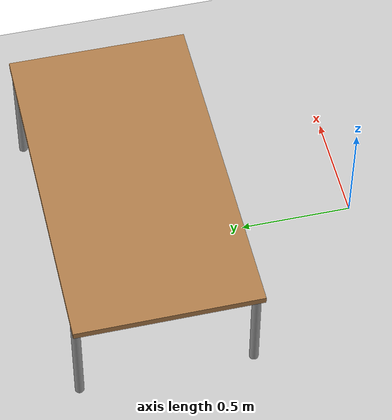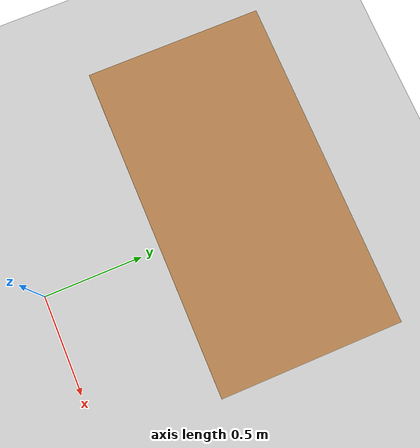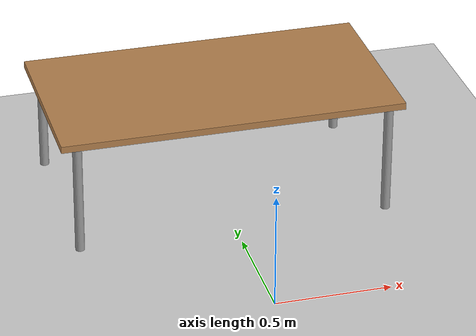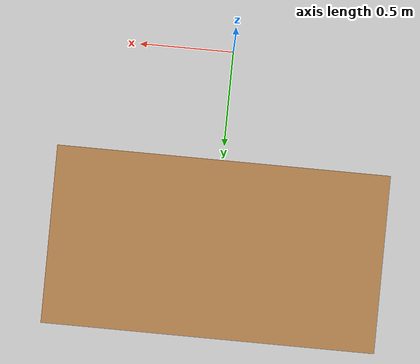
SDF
<?xml version="1.0" ?>
<sdf version="1.4">
  <world name="default">
    <include>
      <uri>model://ground_plane</uri>
    </include>
    <include>
      <uri>model://sun</uri>
    </include>
    <include>
      <uri>package://panda_simulation/models/table_short</uri>
      <name>table_short</name>
      <pose>0 1.0 0 0 0 0</pose>
    </include>
  </world>
</sdf>

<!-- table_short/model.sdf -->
<sdf version='1.7'>
  <model name='table_short'>
    <link name='link'>
      <self_collide>0</self_collide>
      <enable_wind>0</enable_wind>
      <kinematic>0</kinematic>
      <pose>0 0 0 0 -0 0</pose>
      <gravity>1</gravity>
      <inertial>
        <mass>1</mass>
        <pose>0 0 0 0 -0 0</pose>
        <inertia>
          <ixx>1</ixx>
          <ixy>0</ixy>
          <ixz>0</ixz>
          <iyy>1</iyy>
          <iyz>0</iyz>
          <izz>1</izz>
        </inertia>
      </inertial>
      <visual name='visual1'>
        <pose>0 0 0.5 0 -0 0</pose>
        <geometry>
          <box>
            <size>1.5 0.8 0.03</size>
          </box>
        </geometry>
        <material>
          <script>
            <uri>file://media/materials/scripts/gazebo.material</uri>
            <name>Gazebo/Wood</name>
          </script>
          <shader type='pixel'>
            <normal_map>__default__</normal_map>
          </shader>
          <ambient>1 1 1 1</ambient>
          <diffuse>1 1 1 1</diffuse>
          <specular>0.2 0.2 0.2 1</specular>
          <emissive>0 0 0 1</emissive>
        </material>
        <transparency>0</transparency>
        <cast_shadows>1</cast_shadows>
      </visual>
      <visual name='front_left_leg'>
        <pose>0.68 0.38 0.25 0 -0 0</pose>
        <geometry>
          <cylinder>
            <radius>0.02</radius>
            <length>0.5</length>
          </cylinder>
        </geometry>
        <material>
          <script>
            <uri>file://media/materials/scripts/gazebo.material</uri>
            <name>Gazebo/Grey</name>
          </script>
          <shader type='pixel'>
            <normal_map>__default__</normal_map>
          </shader>
          <ambient>0.3 0.3 0.3 1</ambient>
          <diffuse>0.7 0.7 0.7 1</diffuse>
          <specular>0.01 0.01 0.01 1</specular>
          <emissive>0 0 0 1</emissive>
        </material>
        <transparency>0</transparency>
        <cast_shadows>1</cast_shadows>
      </visual>
      <visual name='front_right_leg'>
        <pose>0.68 -0.38 0.25 0 -0 0</pose>
        <geometry>
          <cylinder>
            <radius>0.02</radius>
            <length>0.5</length>
          </cylinder>
        </geometry>
        <material>
          <script>
            <uri>file://media/materials/scripts/gazebo.material</uri>
            <name>Gazebo/Grey</name>
          </script>
          <shader type='pixel'>
            <normal_map>__default__</normal_map>
          </shader>
          <ambient>0.3 0.3 0.3 1</ambient>
          <diffuse>0.7 0.7 0.7 1</diffuse>
          <specular>0.01 0.01 0.01 1</specular>
          <emissive>0 0 0 1</emissive>
        </material>
        <transparency>0</transparency>
        <cast_shadows>1</cast_shadows>
      </visual>
      <visual name='back_right_leg'>
        <pose>-0.68 -0.38 0.25 0 -0 0</pose>
        <geometry>
          <cylinder>
            <radius>0.02</radius>
            <length>0.5</length>
          </cylinder>
        </geometry>
        <material>
          <script>
            <uri>file://media/materials/scripts/gazebo.material</uri>
            <name>Gazebo/Grey</name>
          </script>
          <shader type='pixel'>
            <normal_map>__default__</normal_map>
          </shader>
          <ambient>0.3 0.3 0.3 1</ambient>
          <diffuse>0.7 0.7 0.7 1</diffuse>
          <specular>0.01 0.01 0.01 1</specular>
          <emissive>0 0 0 1</emissive>
        </material>
        <transparency>0</transparency>
        <cast_shadows>1</cast_shadows>
      </visual>
      <visual name='back_left_leg'>
        <pose>-0.68 0.38 0.25 0 -0 0</pose>
        <geometry>
          <cylinder>
            <radius>0.02</radius>
            <length>0.5</length>
          </cylinder>
        </geometry>
        <material>
          <script>
            <uri>file://media/materials/scripts/gazebo.material</uri>
            <name>Gazebo/Grey</name>
          </script>
          <shader type='pixel'>
            <normal_map>__default__</normal_map>
          </shader>
          <ambient>0.3 0.3 0.3 1</ambient>
          <diffuse>0.7 0.7 0.7 1</diffuse>
          <specular>0.01 0.01 0.01 1</specular>
          <emissive>0 0 0 1</emissive>
        </material>
        <transparency>0</transparency>
        <cast_shadows>1</cast_shadows>
      </visual>
      <collision name='surface'>
        <laser_retro>0</laser_retro>
        <max_contacts>10</max_contacts>
        <pose>0 0 0.5 0 -0 0</pose>
        <geometry>
          <box>
            <size>1.5 0.8 0.03</size>
          </box>
        </geometry>
        <surface>
          <friction>
            <ode>
              <mu>0.6</mu>
              <mu2>0.6</mu2>
              <fdir1>0 0 0</fdir1>
              <slip1>0</slip1>
              <slip2>0</slip2>
            </ode>
            <torsional>
              <coefficient>1</coefficient>
              <patch_radius>0</patch_radius>
              <surface_radius>0</surface_radius>
              <use_patch_radius>1</use_patch_radius>
              <ode>
                <slip>0</slip>
              </ode>
            </torsional>
          </friction>
          <bounce>
            <restitution_coefficient>0</restitution_coefficient>
            <threshold>1e+06</threshold>
          </bounce>
          <contact>
            <collide_without_contact>0</collide_without_contact>
            <collide_without_contact_bitmask>1</collide_without_contact_bitmask>
            <collide_bitmask>1</collide_bitmask>
            <ode>
              <soft_cfm>0</soft_cfm>
              <soft_erp>0.2</soft_erp>
              <kp>1e+13</kp>
              <kd>1</kd>
              <max_vel>0.01</max_vel>
              <min_depth>0</min_depth>
            </ode>
            <bullet>
              <split_impulse>1</split_impulse>
              <split_impulse_penetration_threshold>-0.01</split_impulse_penetration_threshold>
              <soft_cfm>0</soft_cfm>
              <soft_erp>0.2</soft_erp>
              <kp>1e+13</kp>
              <kd>1</kd>
            </bullet>
          </contact>
        </surface>
      </collision>
      <collision name='front_left_leg'>
        <laser_retro>0</laser_retro>
        <max_contacts>10</max_contacts>
        <pose>0.68 0.38 0.25 0 -0 0</pose>
        <geometry>
          <cylinder>
            <radius>0.02</radius>
            <length>0.5</length>
          </cylinder>
        </geometry>
        <surface>
          <friction>
            <ode>
              <mu>1</mu>
              <mu2>1</mu2>
              <fdir1>0 0 0</fdir1>
              <slip1>0</slip1>
              <slip2>0</slip2>
            </ode>
            <torsional>
              <coefficient>1</coefficient>
              <patch_radius>0</patch_radius>
              <surface_radius>0</surface_radius>
              <use_patch_radius>1</use_patch_radius>
              <ode>
                <slip>0</slip>
              </ode>
            </torsional>
          </friction>
          <bounce>
            <restitution_coefficient>0</restitution_coefficient>
            <threshold>1e+06</threshold>
          </bounce>
          <contact>
            <collide_without_contact>0</collide_without_contact>
            <collide_without_contact_bitmask>1</collide_without_contact_bitmask>
            <collide_bitmask>1</collide_bitmask>
            <ode>
              <soft_cfm>0</soft_cfm>
              <soft_erp>0.2</soft_erp>
              <kp>1e+13</kp>
              <kd>1</kd>
              <max_vel>0.01</max_vel>
              <min_depth>0</min_depth>
            </ode>
            <bullet>
              <split_impulse>1</split_impulse>
              <split_impulse_penetration_threshold>-0.01</split_impulse_penetration_threshold>
              <soft_cfm>0</soft_cfm>
              <soft_erp>0.2</soft_erp>
              <kp>1e+13</kp>
              <kd>1</kd>
            </bullet>
          </contact>
        </surface>
      </collision>
      <collision name='front_right_leg'>
        <laser_retro>0</laser_retro>
        <max_contacts>10</max_contacts>
        <pose>0.68 -0.38 0.25 0 -0 0</pose>
        <geometry>
          <cylinder>
            <radius>0.02</radius>
            <length>0.5</length>
          </cylinder>
        </geometry>
        <surface>
          <friction>
            <ode>
              <mu>1</mu>
              <mu2>1</mu2>
              <fdir1>0 0 0</fdir1>
              <slip1>0</slip1>
              <slip2>0</slip2>
            </ode>
            <torsional>
              <coefficient>1</coefficient>
              <patch_radius>0</patch_radius>
              <surface_radius>0</surface_radius>
              <use_patch_radius>1</use_patch_radius>
              <ode>
                <slip>0</slip>
              </ode>
            </torsional>
          </friction>
          <bounce>
            <restitution_coefficient>0</restitution_coefficient>
            <threshold>1e+06</threshold>
          </bounce>
          <contact>
            <collide_without_contact>0</collide_without_contact>
            <collide_without_contact_bitmask>1</collide_without_contact_bitmask>
            <collide_bitmask>1</collide_bitmask>
            <ode>
              <soft_cfm>0</soft_cfm>
              <soft_erp>0.2</soft_erp>
              <kp>1e+13</kp>
              <kd>1</kd>
              <max_vel>0.01</max_vel>
              <min_depth>0</min_depth>
            </ode>
            <bullet>
              <split_impulse>1</split_impulse>
              <split_impulse_penetration_threshold>-0.01</split_impulse_penetration_threshold>
              <soft_cfm>0</soft_cfm>
              <soft_erp>0.2</soft_erp>
              <kp>1e+13</kp>
              <kd>1</kd>
            </bullet>
          </contact>
        </surface>
      </collision>
      <collision name='back_right_leg'>
        <laser_retro>0</laser_retro>
        <max_contacts>10</max_contacts>
        <pose>-0.68 -0.38 0.25 0 -0 0</pose>
        <geometry>
          <cylinder>
            <radius>0.02</radius>
            <length>0.5</length>
          </cylinder>
        </geometry>
        <surface>
          <friction>
            <ode>
              <mu>1</mu>
              <mu2>1</mu2>
              <fdir1>0 0 0</fdir1>
              <slip1>0</slip1>
              <slip2>0</slip2>
            </ode>
            <torsional>
              <coefficient>1</coefficient>
              <patch_radius>0</patch_radius>
              <surface_radius>0</surface_radius>
              <use_patch_radius>1</use_patch_radius>
              <ode>
                <slip>0</slip>
              </ode>
            </torsional>
          </friction>
          <bounce>
            <restitution_coefficient>0</restitution_coefficient>
            <threshold>1e+06</threshold>
          </bounce>
          <contact>
            <collide_without_contact>0</collide_without_contact>
            <collide_without_contact_bitmask>1</collide_without_contact_bitmask>
            <collide_bitmask>1</collide_bitmask>
            <ode>
              <soft_cfm>0</soft_cfm>
              <soft_erp>0.2</soft_erp>
              <kp>1e+13</kp>
              <kd>1</kd>
              <max_vel>0.01</max_vel>
              <min_depth>0</min_depth>
            </ode>
            <bullet>
              <split_impulse>1</split_impulse>
              <split_impulse_penetration_threshold>-0.01</split_impulse_penetration_threshold>
              <soft_cfm>0</soft_cfm>
              <soft_erp>0.2</soft_erp>
              <kp>1e+13</kp>
              <kd>1</kd>
            </bullet>
          </contact>
        </surface>
      </collision>
      <collision name='back_left_leg'>
        <laser_retro>0</laser_retro>
        <max_contacts>10</max_contacts>
        <pose>-0.68 0.38 0.25 0 -0 0</pose>
        <geometry>
          <cylinder>
            <radius>0.02</radius>
            <length>0.5</length>
          </cylinder>
        </geometry>
        <surface>
          <friction>
            <ode>
              <mu>1</mu>
              <mu2>1</mu2>
              <fdir1>0 0 0</fdir1>
              <slip1>0</slip1>
              <slip2>0</slip2>
            </ode>
            <torsional>
              <coefficient>1</coefficient>
              <patch_radius>0</patch_radius>
              <surface_radius>0</surface_radius>
              <use_patch_radius>1</use_patch_radius>
              <ode>
                <slip>0</slip>
              </ode>
            </torsional>
          </friction>
          <bounce>
            <restitution_coefficient>0</restitution_coefficient>
            <threshold>1e+06</threshold>
          </bounce>
          <contact>
            <collide_without_contact>0</collide_without_contact>
            <collide_without_contact_bitmask>1</collide_without_contact_bitmask>
            <collide_bitmask>1</collide_bitmask>
            <ode>
              <soft_cfm>0</soft_cfm>
              <soft_erp>0.2</soft_erp>
              <kp>1e+13</kp>
              <kd>1</kd>
              <max_vel>0.01</max_vel>
              <min_depth>0</min_depth>
            </ode>
            <bullet>
              <split_impulse>1</split_impulse>
              <split_impulse_penetration_threshold>-0.01</split_impulse_penetration_threshold>
              <soft_cfm>0</soft_cfm>
              <soft_erp>0.2</soft_erp>
              <kp>1e+13</kp>
              <kd>1</kd>
            </bullet>
          </contact>
        </surface>
      </collision>
    </link>
    <static>1</static>
    <allow_auto_disable>1</allow_auto_disable>
  </model>
</sdf>
